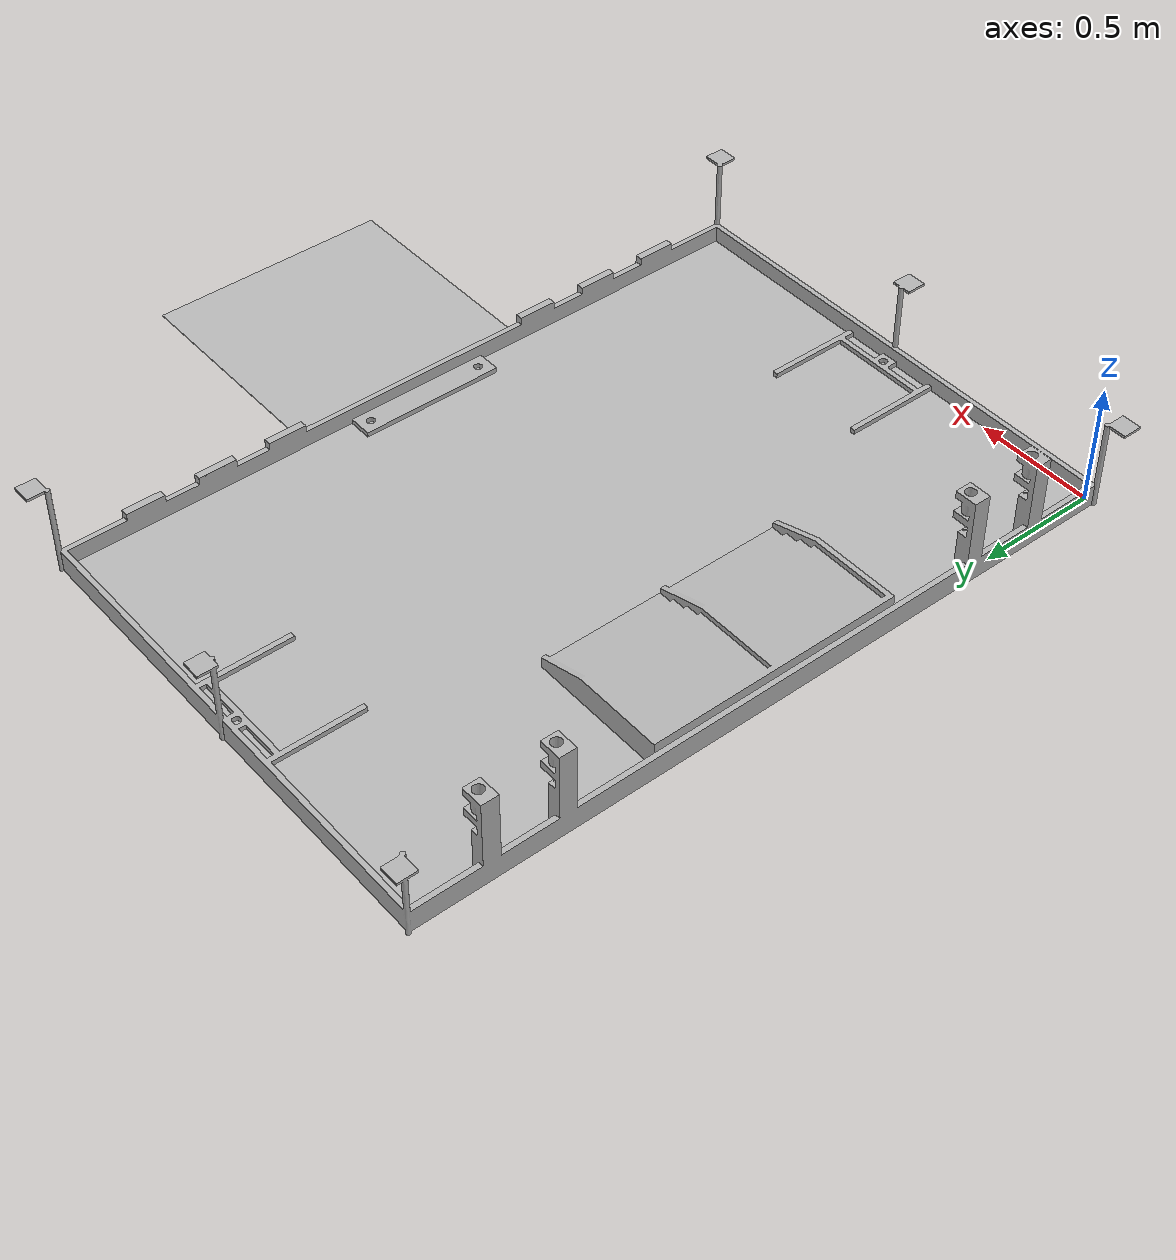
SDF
<?xml version="1.0" ?>
<sdf version="1.5">
  <model name="arene">
    <static>true</static>
    <link name="sol">
      <pose>1 1.5 0.001 0 0 0</pose>
      <collision name="collision">
        <geometry>
          <plane>
            <normal>0 0 1</normal>
            <size>2.0 3.0</size>
          </plane>
        </geometry>
        <surface>
          <friction>
            <ode>
              <mu>100</mu>
              <mu2>50</mu2>
            </ode>
          </friction>
          <contact>
           <ode/>
          </contact>
          <bounce/>
        </surface>
      </collision>
      <visual name="visual">
        <cast_shadows>false</cast_shadows>
        <geometry>
          <plane>
            <normal>0 0 1</normal>
            <size>2.0 3.0</size>
          </plane>
        </geometry>
        <material>
          <script>
            <uri>model://robomovies/materials/scripts/</uri>
            <uri>model://robomovies/materials/textures/</uri>
            <name>Robomovies/Floor</name>
          </script>
        </material>
      </visual>
	  <visual name="reclame">
	    <pose>1.5 0 0.001 0 0 1.5707</pose>
        <cast_shadows>false</cast_shadows>
        <geometry>
          <plane>
            <normal>0 0 1</normal>
            <size>1.0 1.0</size>
          </plane>
        </geometry>
        <material>
          <script>
            <uri>model://robomovies/materials/scripts/</uri>
            <uri>model://robomovies/materials/textures/</uri>
            <name>Robomovies/Intel</name>
          </script>
        </material>
      </visual>
    </link>
    <!-- Robomovies Arena in 3D -->
      <link name="relief">
      	<pose>0 0 0 0 0 1.5707</pose>
        <collision name="collision">
          <geometry>
            <mesh>
				<scale>0.001 0.001 0.001</scale>
				<uri>model://robomovies/meshes/table.dae</uri>
            </mesh>
          </geometry>
	<surface>
	  <friction>
	    <ode>
	      <mu>100</mu>
	      <mu2>50</mu2>
	    </ode>
	  </friction>
	</surface>
	</collision>
	<visual name="visual">
      <geometry>
        <mesh>
	<scale>0.001 0.001 0.001</scale>
	<uri>model://robomovies/meshes/table.dae</uri>
    </mesh>
      </geometry>
    </visual>
     </link>
  </model>
 </sdf>
